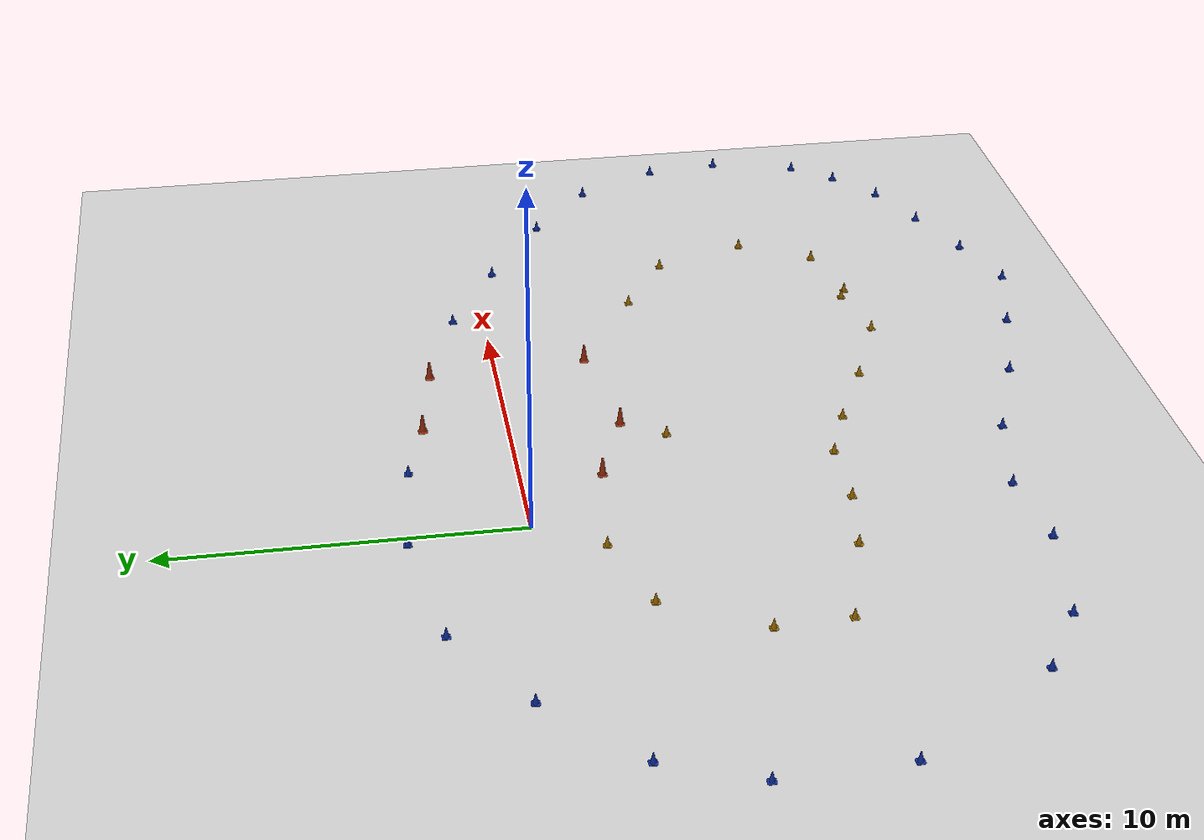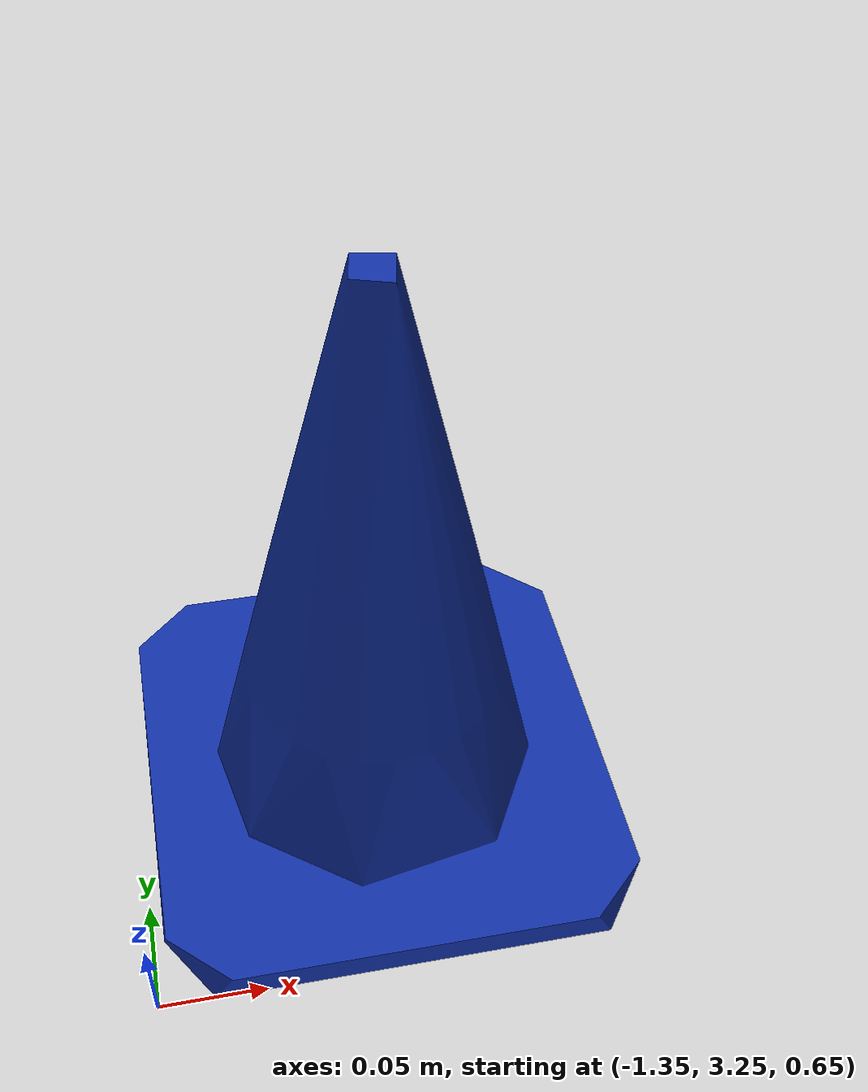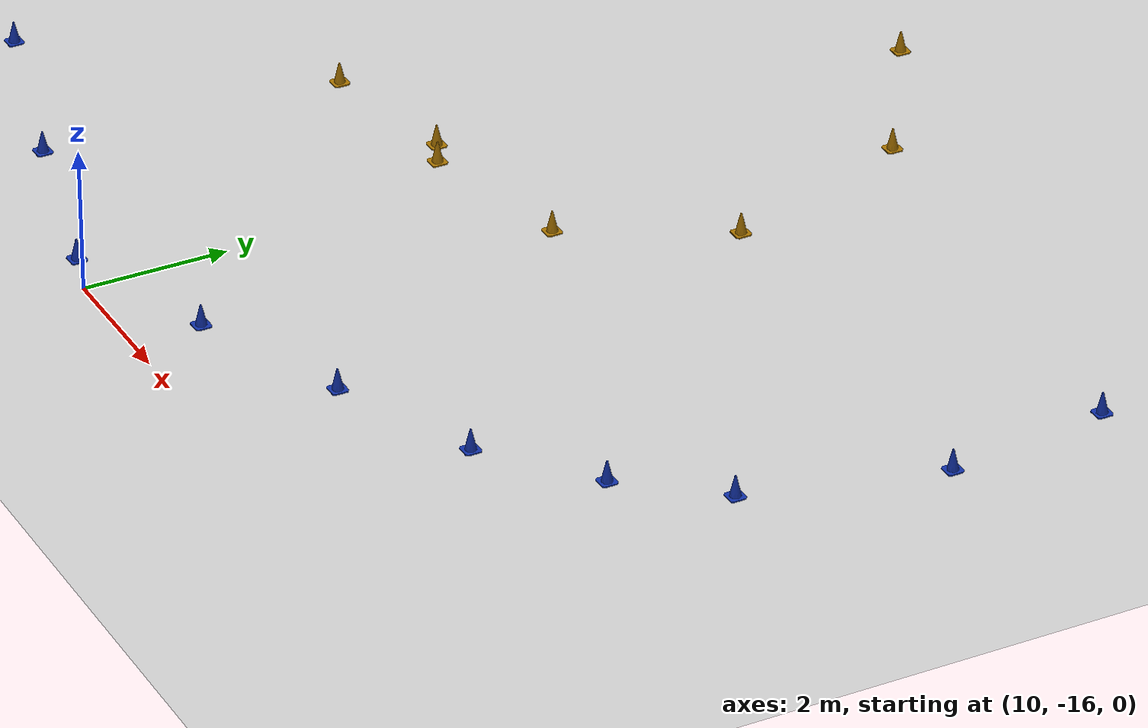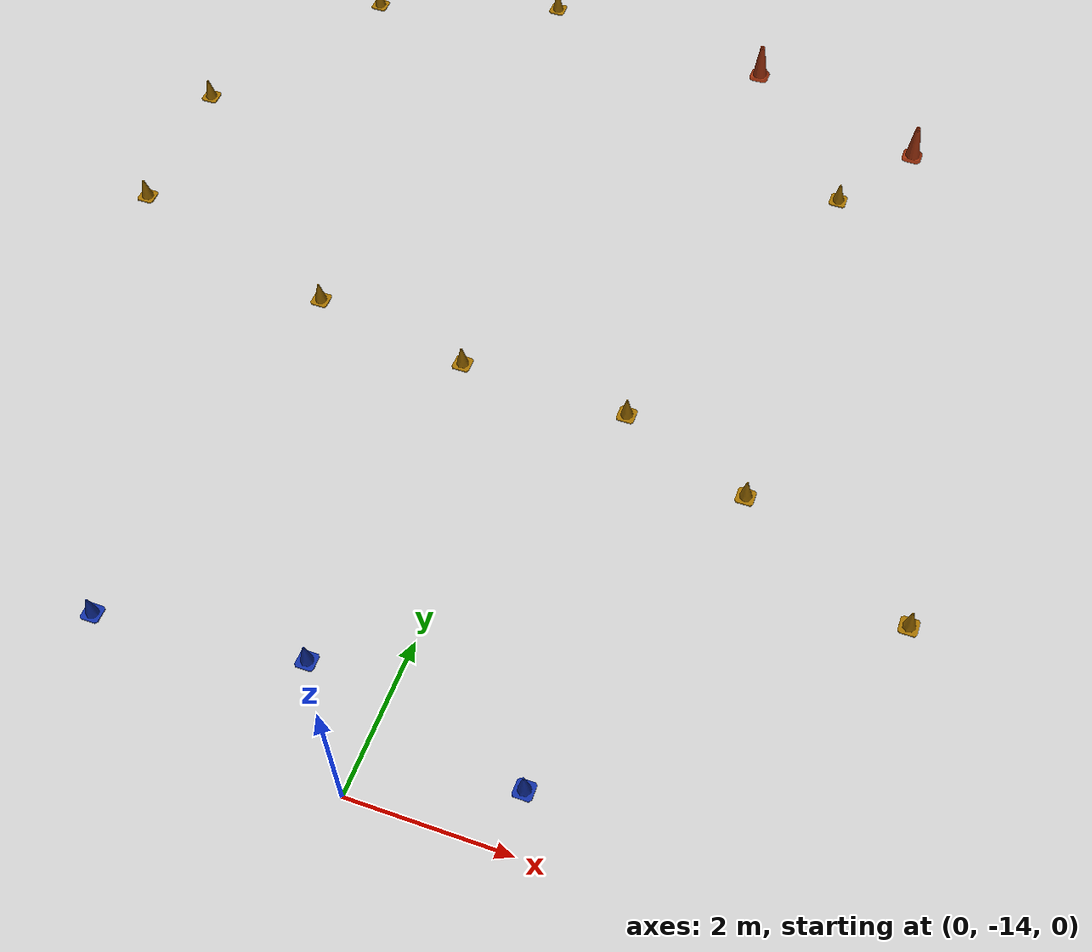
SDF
<sdf version='1.6'>
  <world name='Jellybean_02_03_2023'>
    <gui fullscreen='0'>
      <camera name='user_camera'>
        <pose frame=''>-40 40 20 0 0.667643 -1</pose>
        <view_controller>orbit</view_controller>
        <projection_type>perspective</projection_type>
      </camera>
    </gui>

    <!-- WORLD SETTINGS -->
    <scene>
      <ambient>1.0 1.0 1.0 1.0</ambient>
      <shadows>false</shadows>
    </scene>

    <spherical_coordinates>
      <heading_deg>180</heading_deg>

      <!-- Appleton Tower coordinates -->
      <latitude_deg>-27.690733</latitude_deg>
      <longitude_deg>152.656715</longitude_deg>
    </spherical_coordinates>

    <light name='sun' type='directional'>
      <cast_shadows>1</cast_shadows>
      <pose frame=''>0 0 10 0 -0 0</pose>
      <diffuse>0.8 0.8 0.8 1</diffuse>
      <specular>0.1 0.1 0.1 1</specular>
      <attenuation>
        <range>1000</range>
        <constant>0.9</constant>
        <linear>0.01</linear>
        <quadratic>0.001</quadratic>
      </attenuation>
      <direction>-0.5 0.5 -1</direction>
    </light>

    <!-- MODELS -->
    <include>
      <uri>model://ground_plane</uri>
      <pose>0.0 0.0 0.0 0 0 0</pose>
    </include>

    <include>
      <uri>model://Jellybean_02_03_2023</uri>
      <pose>0 0 0.5 0 0 0</pose>
    </include>

  </world>
</sdf>

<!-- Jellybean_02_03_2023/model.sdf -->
<sdf version='1.6'>
  <model name='track'>

    <include>
      <pose>17.95122626235897 -4.113242777666811 0.15 0 0 0</pose>
      <uri>model://blue_cone</uri>
      <name>blue_cone_0</name>

      <covariance x="0.1" y="0.1" xy="0"/>

    </include>

    <include>
      <pose>4.878851902484176 -14.67501103281469 0.15 0 0 0</pose>
      <uri>model://blue_cone</uri>
      <name>blue_cone_1</name>

      <covariance x="0.1" y="0.1" xy="0"/>

    </include>

    <include>
      <pose>10.06424118695782 1.0430181184708314 0.15 0 0 0</pose>
      <uri>model://blue_cone</uri>
      <name>blue_cone_2</name>

      <covariance x="0.1" y="0.1" xy="0"/>

    </include>

    <include>
      <pose>12.8534435071022 -0.4705418510456606 0.15 0 0 0</pose>
      <uri>model://blue_cone</uri>
      <name>blue_cone_3</name>

      <covariance x="0.1" y="0.1" xy="0"/>

    </include>

    <include>
      <pose>15.720677683058774 -2.265062242100158 0.15 0 0 0</pose>
      <uri>model://blue_cone</uri>
      <name>blue_cone_4</name>

      <covariance x="0.1" y="0.1" xy="0"/>

    </include>

    <include>
      <pose>12.423885144545345 -15.473498848795645 0.15 0 0 0</pose>
      <uri>model://blue_cone</uri>
      <name>blue_cone_5</name>

      <covariance x="0.1" y="0.1" xy="0"/>

    </include>

    <include>
      <pose>7.66648429824481 -15.498641205949644 0.15 0 0 0</pose>
      <uri>model://blue_cone</uri>
      <name>blue_cone_6</name>

      <covariance x="0.1" y="0.1" xy="0"/>

    </include>

    <include>
      <pose>14.52313256680315 -14.620864821266188 0.15 0 0 0</pose>
      <uri>model://blue_cone</uri>
      <name>blue_cone_7</name>

      <covariance x="0.1" y="0.1" xy="0"/>

    </include>

    <include>
      <pose>16.467971423968923 -13.792150677115728 0.15 0 0 0</pose>
      <uri>model://blue_cone</uri>
      <name>blue_cone_8</name>

      <covariance x="0.1" y="0.1" xy="0"/>

    </include>

    <include>
      <pose>17.829814277701203 -12.66105752494656 0.15 0 0 0</pose>
      <uri>model://blue_cone</uri>
      <name>blue_cone_9</name>

      <covariance x="0.1" y="0.1" xy="0"/>

    </include>

    <include>
      <pose>19.221104881517125 -6.622128592781888 0.15 0 0 0</pose>
      <uri>model://blue_cone</uri>
      <name>blue_cone_10</name>

      <covariance x="0.1" y="0.1" xy="0"/>

    </include>

    <include>
      <pose>19.48967002667506 -8.865824738669993 0.15 0 0 0</pose>
      <uri>model://blue_cone</uri>
      <name>blue_cone_11</name>

      <covariance x="0.1" y="0.1" xy="0"/>

    </include>

    <include>
      <pose>18.809446417543096 -11.454983026441656 0.15 0 0 0</pose>
      <uri>model://blue_cone</uri>
      <name>blue_cone_12</name>

      <covariance x="0.1" y="0.1" xy="0"/>

    </include>

    <include>
      <pose>1.9489150724644169 -13.523916060604272 0.15 0 0 0</pose>
      <uri>model://blue_cone</uri>
      <name>blue_cone_13</name>

      <covariance x="0.1" y="0.1" xy="0"/>

    </include>

    <include>
      <pose>-3.3486020079019627 -13.178729891647055 0.15 0 0 0</pose>
      <uri>model://blue_cone</uri>
      <name>blue_cone_14</name>

      <covariance x="0.1" y="0.1" xy="0"/>

    </include>

    <include>
      <pose>-0.8312040179123011 -12.916367580050544 0.15 0 0 0</pose>
      <uri>model://blue_cone</uri>
      <name>blue_cone_15</name>

      <covariance x="0.1" y="0.1" xy="0"/>

    </include>

    <include>
      <pose>-8.551298380542729 -11.371689764133444 0.15 0 0 0</pose>
      <uri>model://blue_cone</uri>
      <name>blue_cone_16</name>

      <covariance x="0.1" y="0.1" xy="0"/>

    </include>

    <include>
      <pose>-7.985548337070909 0.9461202242214204 0.15 0 0 0</pose>
      <uri>model://blue_cone</uri>
      <name>blue_cone_17</name>

      <covariance x="0.1" y="0.1" xy="0"/>

    </include>

    <include>
      <pose>-1.2319167817017775 3.3590295293265964 0.15 0 0 0</pose>
      <uri>model://blue_cone</uri>
      <name>blue_cone_18</name>

      <covariance x="0.1" y="0.1" xy="0"/>

    </include>

    <include>
      <pose>-5.185288432564803 2.7596524929915804 0.15 0 0 0</pose>
      <uri>model://blue_cone</uri>
      <name>blue_cone_19</name>

      <covariance x="0.1" y="0.1" xy="0"/>

    </include>

    <include>
      <pose>-6.5731512657490745 -12.59190913702255 0.15 0 0 0</pose>
      <uri>model://blue_cone</uri>
      <name>blue_cone_20</name>

      <covariance x="0.1" y="0.1" xy="0"/>

    </include>

    <include>
      <pose>-11.457188782751922 -3.890519192987094 0.15 0 0 0</pose>
      <uri>model://blue_cone</uri>
      <name>blue_cone_21</name>

      <covariance x="0.1" y="0.1" xy="0"/>

    </include>

    <include>
      <pose>-10.439707087183388 -1.3892463843974812 0.15 0 0 0</pose>
      <uri>model://blue_cone</uri>
      <name>blue_cone_22</name>

      <covariance x="0.1" y="0.1" xy="0"/>

    </include>

    <include>
      <pose>-11.308458338438712 -7.347173380315581 0.15 0 0 0</pose>
      <uri>model://blue_cone</uri>
      <name>blue_cone_23</name>

      <covariance x="0.1" y="0.1" xy="0"/>

    </include>

    <include>
      <pose>2.0388905811759632 3.065377440764125 0.15 0 0 0</pose>
      <uri>model://blue_cone</uri>
      <name>blue_cone_24</name>

      <covariance x="0.1" y="0.1" xy="0"/>

    </include>

    <include>
      <pose>10.294603361083787 -16.19669234409406 0.15 0 0 0</pose>
      <uri>model://blue_cone</uri>
      <name>blue_cone_25</name>

      <covariance x="0.1" y="0.1" xy="0"/>

    </include>

    <include>
      <pose>10.428884354383172 -4.3872016031827545 0.15 0 0 0</pose>
      <uri>model://yellow_cone</uri>
      <name>yellow_cone_26</name>

      <covariance x="0.1" y="0.1" xy="0"/>

    </include>

    <include>
      <pose>12.58577871548571 -5.74366975145293 0.15 0 0 0</pose>
      <uri>model://yellow_cone</uri>
      <name>yellow_cone_27</name>

      <covariance x="0.1" y="0.1" xy="0"/>

    </include>

    <include>
      <pose>9.8277102783683 -10.918242951168189 0.15 0 0 0</pose>
      <uri>model://yellow_cone</uri>
      <name>yellow_cone_28</name>

      <covariance x="0.1" y="0.1" xy="0"/>

    </include>

    <include>
      <pose>2.936654350018122 -4.179658137824395 0.15 0 0 0</pose>
      <uri>model://yellow_cone</uri>
      <name>yellow_cone_29</name>

      <covariance x="0.1" y="0.1" xy="0"/>

    </include>

    <include>
      <pose>3.096449269300433 -9.23535224473557 0.15 0 0 0</pose>
      <uri>model://yellow_cone</uri>
      <name>yellow_cone_30</name>

      <covariance x="0.1" y="0.1" xy="0"/>

    </include>

    <include>
      <pose>12.412915406340074 -10.5859970255496 0.15 0 0 0</pose>
      <uri>model://yellow_cone</uri>
      <name>yellow_cone_31</name>

      <covariance x="0.1" y="0.1" xy="0"/>

    </include>

    <include>
      <pose>10.212068823996317 -11.100090127511953 0.15 0 0 0</pose>
      <uri>model://yellow_cone</uri>
      <name>yellow_cone_32</name>

      <covariance x="0.1" y="0.1" xy="0"/>

    </include>

    <include>
      <pose>13.540034678395726 -8.488091772107184 0.15 0 0 0</pose>
      <uri>model://yellow_cone</uri>
      <name>yellow_cone_33</name>

      <covariance x="0.1" y="0.1" xy="0"/>

    </include>

    <include>
      <pose>7.808452805723848 -11.324288013350456 0.15 0 0 0</pose>
      <uri>model://yellow_cone</uri>
      <name>yellow_cone_34</name>

      <covariance x="0.1" y="0.1" xy="0"/>

    </include>

    <include>
      <pose>5.289574991957227 -10.29294527777167 0.15 0 0 0</pose>
      <uri>model://yellow_cone</uri>
      <name>yellow_cone_35</name>

      <covariance x="0.1" y="0.1" xy="0"/>

    </include>

    <include>
      <pose>-5.928785801998696 -7.236604268537305 0.15 0 0 0</pose>
      <uri>model://yellow_cone</uri>
      <name>yellow_cone_36</name>

      <covariance x="0.1" y="0.1" xy="0"/>

    </include>

    <include>
      <pose>-0.794992667797852 -8.498893271083453 0.15 0 0 0</pose>
      <uri>model://yellow_cone</uri>
      <name>yellow_cone_37</name>

      <covariance x="0.1" y="0.1" xy="0"/>

    </include>

    <include>
      <pose>-6.035353212295006 -5.174599768020108 0.15 0 0 0</pose>
      <uri>model://yellow_cone</uri>
      <name>yellow_cone_38</name>

      <covariance x="0.1" y="0.1" xy="0"/>

    </include>

    <include>
      <pose>-2.914873016445196 -8.133717222482534 0.15 0 0 0</pose>
      <uri>model://yellow_cone</uri>
      <name>yellow_cone_39</name>

      <covariance x="0.1" y="0.1" xy="0"/>

    </include>

    <include>
      <pose>-4.57240285092701 -2.5146756431470005 0.15 0 0 0</pose>
      <uri>model://yellow_cone</uri>
      <name>yellow_cone_40</name>

      <covariance x="0.1" y="0.1" xy="0"/>

    </include>

    <include>
      <pose>1.395357091244708 -8.56801966670588 0.15 0 0 0</pose>
      <uri>model://yellow_cone</uri>
      <name>yellow_cone_41</name>

      <covariance x="0.1" y="0.1" xy="0"/>

    </include>

    <include>
      <pose>-2.0136741746181195 -1.71447429174616 0.15 0 0 0</pose>
      <uri>model://yellow_cone</uri>
      <name>yellow_cone_42</name>

      <covariance x="0.1" y="0.1" xy="0"/>

    </include>

    <include>
      <pose>7.258648410706423 -2.526845436308498 0.15 0 0 0</pose>
      <uri>model://big_cone</uri>
      <name>big_cone_43</name>

      <covariance x="0.1" y="0.1" xy="0"/>

    </include>

    <include>
      <pose>3.695649758114858 -3.001612095629316 0.15 0 0 0</pose>
      <uri>model://big_cone</uri>
      <name>big_cone_44</name>

      <covariance x="0.1" y="0.1" xy="0"/>

    </include>

    <include>
      <pose>4.137695722111109 2.4842471779316875 0.15 0 0 0</pose>
      <uri>model://big_cone</uri>
      <name>big_cone_45</name>

      <covariance x="0.1" y="0.1" xy="0"/>

    </include>

    <include>
      <pose>6.968555887552999 2.031150323536128 0.15 0 0 0</pose>
      <uri>model://big_cone</uri>
      <name>big_cone_46</name>

      <covariance x="0.1" y="0.1" xy="0"/>

    </include>

    <include>
      <pose>1.245654153749532 -2.113569689030012 0.15 0 0 0</pose>
      <uri>model://big_cone</uri>
      <name>big_cone_47</name>

      <covariance x="0.1" y="0.1" xy="0"/>

    </include>

    <static>0</static>
    <allow_auto_disable>1</allow_auto_disable>
  </model>
</sdf>

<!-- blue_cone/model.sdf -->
<sdf version='1.6'>
  <model name='blue_cone'>
    <link name='link'>
      <pose frame=''>0 0 0 0 0 0</pose>
      <inertial>
        <inertia>
          <ixx>0.0016</ixx>
          <ixy>0</ixy>
          <ixz>0</ixz>
          <iyy>0.0016</iyy>
          <iyz>0</iyz>
          <izz>0.0010</izz>
        </inertia>
        <mass>0.45</mass>
      </inertial>
      <visual name='visual'>
        <geometry>
          <mesh>
            <uri>model://cone_blue.dae</uri>
          </mesh>
        </geometry>
        <cast_shadows>1</cast_shadows>
      </visual>
      <collision name='collision'>
        <max_contacts>3</max_contacts>
        <geometry>
          <mesh>
            <uri>model://cone_blue.dae</uri>
          </mesh>
        </geometry>
      </collision>
    </link>
  </model>
</sdf>

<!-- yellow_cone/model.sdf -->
<sdf version='1.6'>
  <model name='yellow_cone'>
    <link name='link'>
      <pose frame=''>0 0 0 0 0 0</pose>
      <inertial>
        <inertia>
          <ixx>0.0016</ixx>
          <ixy>0</ixy>
          <ixz>0</ixz>
          <iyy>0.0016</iyy>
          <iyz>0</iyz>
          <izz>0.0010</izz>
        </inertia>
        <mass>0.45</mass>
      </inertial>
      <visual name='visual'>
        <geometry>
          <mesh>
            <uri>model://cone_yellow.dae</uri>
          </mesh>
        </geometry>
        <cast_shadows>1</cast_shadows>
      </visual>
      <collision name='collision'>
        <max_contacts>3</max_contacts>
        <geometry>
          <mesh>
            <uri>model://cone_yellow.dae</uri>
          </mesh>
        </geometry>
      </collision>
    </link>
  </model>
</sdf>

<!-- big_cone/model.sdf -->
<sdf version='1.6'>
  <model name='big_cone'>
    <link name='link'>
      <pose frame=''>0 0 0 0 0 0</pose>
      <inertial>
        <inertia>
          <ixx>0.0016</ixx>
          <ixy>0</ixy>
          <ixz>0</ixz>
          <iyy>0.0016</iyy>
          <iyz>0</iyz>
          <izz>0.0010</izz>
        </inertia>
        <mass>0.45</mass>
      </inertial>
      <visual name='visual'>
        <geometry>
          <mesh>
            <uri>model://cone_big.dae</uri>
          </mesh>
        </geometry>
        <cast_shadows>1</cast_shadows>
      </visual>
      <collision name='collision'>
        <max_contacts>3</max_contacts>
        <geometry>
          <mesh>
            <uri>model://cone_big.dae</uri>
          </mesh>
        </geometry>
      </collision>
    </link>
  </model>
</sdf>
